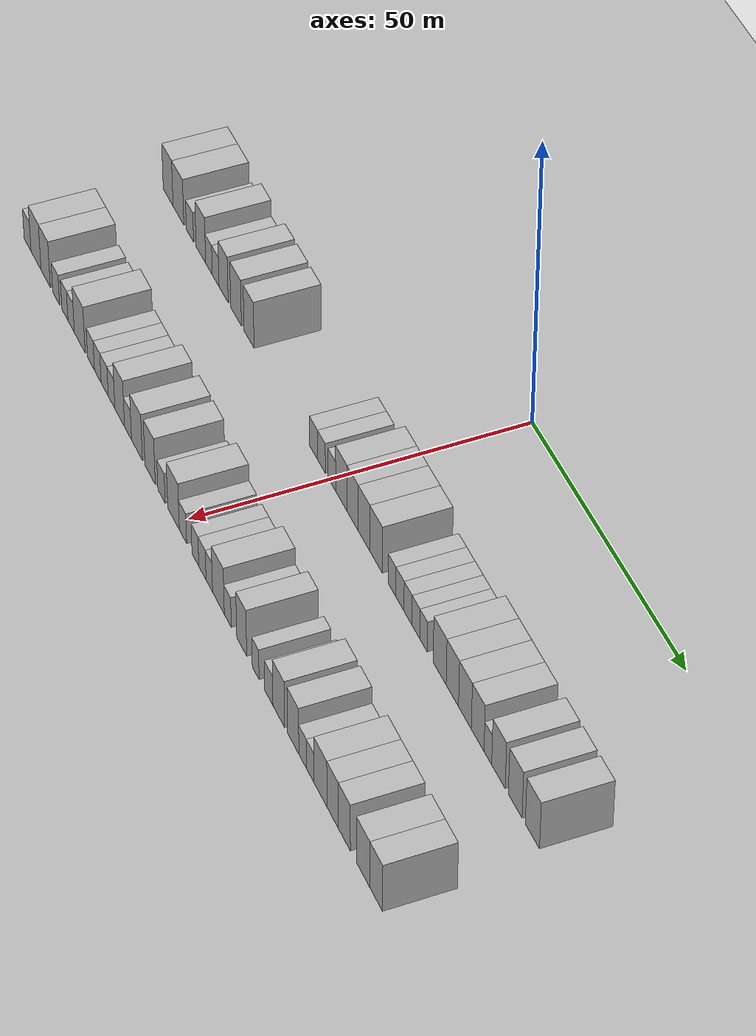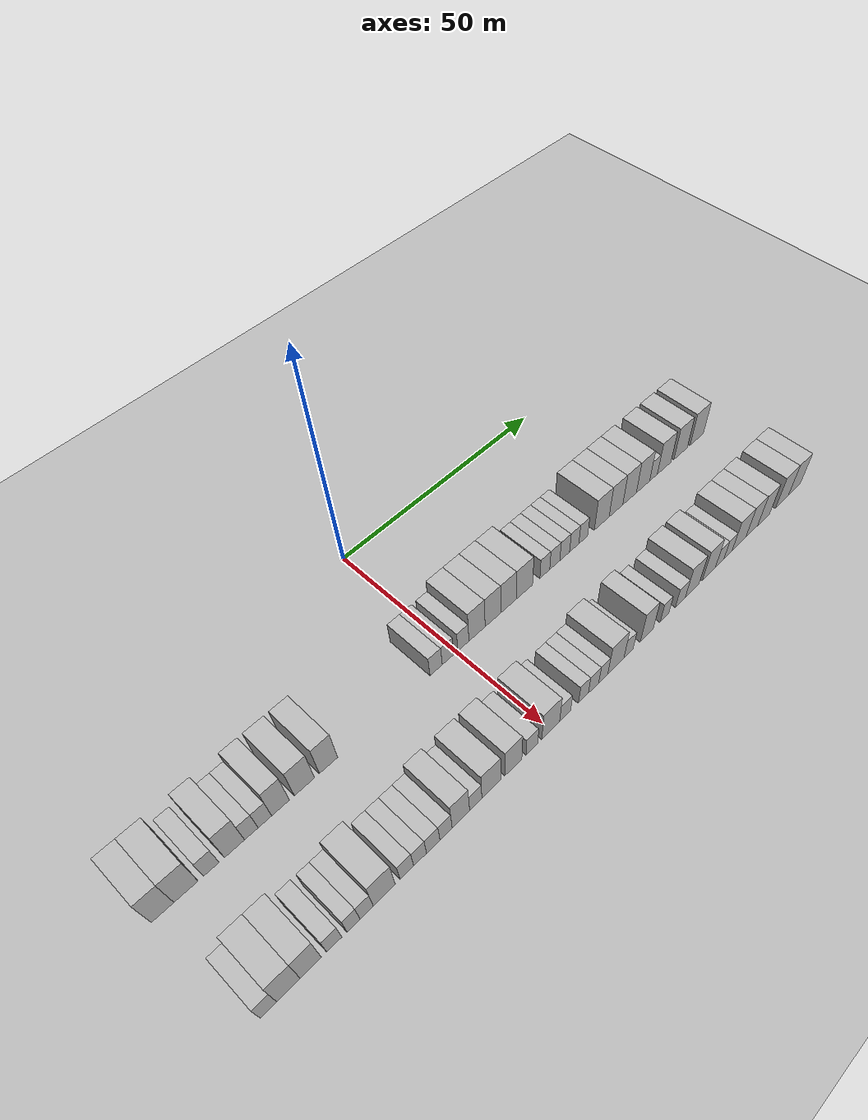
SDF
<sdf version="1.6">
 <world name="default">
  <include><name>ground_plane_1</name><uri>model://HANNAS_ground_plane</uri></include>
  <include>
   <name>ground_plane_2</name>
   <uri>model://HANNAS_ground_plane</uri>
   <pose>100 0 0  0 0 0</pose>
  </include>
  <model name="building_29">
   <static>1</static>
   <pose>25.0000 -61.9204 0 0.000000 0.000000 0.000000</pose>
   <link name="link">
    <pose>0 0 4.50 0 0 0</pose>
    <collision name="collision"><geometry><box><size>10.0000 4.0477 9.0000</size></box></geometry></collision>
    <visual name="visual">
     <cast_shadows>0</cast_shadows>
     <geometry><box><size>10.0000 4.0477 9.0000</size></box></geometry>
     <material>
      <script>
       <uri>model://HANNAS_wall/materials/scripts</uri>
       <uri>model://HANNAS_wall/materials/textures</uri>
       <name>vrc/HANNAS_wall</name>
      </script>
     </material>
    </visual>
   </link>
  </model>
  <model name="building_30">
   <static>1</static>
   <pose>25.0000 -57.6876 0 0.000000 0.000000 0.000000</pose>
   <link name="link">
    <pose>0 0 4.50 0 0 0</pose>
    <collision name="collision"><geometry><box><size>10.0000 4.4179 9.0000</size></box></geometry></collision>
    <visual name="visual">
     <cast_shadows>0</cast_shadows>
     <geometry><box><size>10.0000 4.4179 9.0000</size></box></geometry>
     <material>
      <script>
       <uri>model://HANNAS_wall/materials/scripts</uri>
       <uri>model://HANNAS_wall/materials/textures</uri>
       <name>vrc/HANNAS_wall</name>
      </script>
     </material>
    </visual>
   </link>
  </model>
  <model name="building_31">
   <static>1</static>
   <pose>25.0000 -53.0100 0 0.000000 0.000000 0.000000</pose>
   <link name="link">
    <pose>0 0 3.00 0 0 0</pose>
    <collision name="collision"><geometry><box><size>10.0000 2.9374 6.0000</size></box></geometry></collision>
    <visual name="visual">
     <cast_shadows>0</cast_shadows>
     <geometry><box><size>10.0000 2.9374 6.0000</size></box></geometry>
     <material>
      <script>
       <uri>model://HANNAS_wall/materials/scripts</uri>
       <uri>model://HANNAS_wall/materials/textures</uri>
       <name>vrc/HANNAS_wall</name>
      </script>
     </material>
    </visual>
   </link>
  </model>
  <model name="building_32">
   <static>1</static>
   <pose>25.0000 -48.6133 0 0.000000 0.000000 0.000000</pose>
   <link name="link">
    <pose>0 0 4.50 0 0 0</pose>
    <collision name="collision"><geometry><box><size>10.0000 3.8559 9.0000</size></box></geometry></collision>
    <visual name="visual">
     <cast_shadows>0</cast_shadows>
     <geometry><box><size>10.0000 3.8559 9.0000</size></box></geometry>
     <material>
      <script>
       <uri>model://HANNAS_wall/materials/scripts</uri>
       <uri>model://HANNAS_wall/materials/textures</uri>
       <name>vrc/HANNAS_wall</name>
      </script>
     </material>
    </visual>
   </link>
  </model>
  <model name="building_33">
   <static>1</static>
   <pose>25.0000 -45.3594 0 0.000000 0.000000 0.000000</pose>
   <link name="link">
    <pose>0 0 3.00 0 0 0</pose>
    <collision name="collision"><geometry><box><size>10.0000 2.6521 6.0000</size></box></geometry></collision>
    <visual name="visual">
     <cast_shadows>0</cast_shadows>
     <geometry><box><size>10.0000 2.6521 6.0000</size></box></geometry>
     <material>
      <script>
       <uri>model://HANNAS_wall/materials/scripts</uri>
       <uri>model://HANNAS_wall/materials/textures</uri>
       <name>vrc/HANNAS_wall</name>
      </script>
     </material>
    </visual>
   </link>
  </model>
  <model name="building_34">
   <static>1</static>
   <pose>25.0000 -42.6899 0 0.000000 0.000000 0.000000</pose>
   <link name="link">
    <pose>0 0 3.00 0 0 0</pose>
    <collision name="collision"><geometry><box><size>10.0000 2.6868 6.0000</size></box></geometry></collision>
    <visual name="visual">
     <cast_shadows>0</cast_shadows>
     <geometry><box><size>10.0000 2.6868 6.0000</size></box></geometry>
     <material>
      <script>
       <uri>model://HANNAS_wall/materials/scripts</uri>
       <uri>model://HANNAS_wall/materials/textures</uri>
       <name>vrc/HANNAS_wall</name>
      </script>
     </material>
    </visual>
   </link>
  </model>
  <model name="building_35">
   <static>1</static>
   <pose>25.0000 -39.5424 0 0.000000 0.000000 0.000000</pose>
   <link name="link">
    <pose>0 0 4.50 0 0 0</pose>
    <collision name="collision"><geometry><box><size>10.0000 3.6082 9.0000</size></box></geometry></collision>
    <visual name="visual">
     <cast_shadows>0</cast_shadows>
     <geometry><box><size>10.0000 3.6082 9.0000</size></box></geometry>
     <material>
      <script>
       <uri>model://HANNAS_wall/materials/scripts</uri>
       <uri>model://HANNAS_wall/materials/textures</uri>
       <name>vrc/HANNAS_wall</name>
      </script>
     </material>
    </visual>
   </link>
  </model>
  <model name="building_36">
   <static>1</static>
   <pose>25.0000 -34.6428 0 0.000000 0.000000 0.000000</pose>
   <link name="link">
    <pose>0 0 4.50 0 0 0</pose>
    <collision name="collision"><geometry><box><size>10.0000 4.1911 9.0000</size></box></geometry></collision>
    <visual name="visual">
     <cast_shadows>0</cast_shadows>
     <geometry><box><size>10.0000 4.1911 9.0000</size></box></geometry>
     <material>
      <script>
       <uri>model://HANNAS_wall/materials/scripts</uri>
       <uri>model://HANNAS_wall/materials/textures</uri>
       <name>vrc/HANNAS_wall</name>
      </script>
     </material>
    </visual>
   </link>
  </model>
  <model name="building_37">
   <static>1</static>
   <pose>25.0000 -29.5987 0 0.000000 0.000000 0.000000</pose>
   <link name="link">
    <pose>0 0 4.50 0 0 0</pose>
    <collision name="collision"><geometry><box><size>10.0000 3.8973 9.0000</size></box></geometry></collision>
    <visual name="visual">
     <cast_shadows>0</cast_shadows>
     <geometry><box><size>10.0000 3.8973 9.0000</size></box></geometry>
     <material>
      <script>
       <uri>model://HANNAS_wall/materials/scripts</uri>
       <uri>model://HANNAS_wall/materials/textures</uri>
       <name>vrc/HANNAS_wall</name>
      </script>
     </material>
    </visual>
   </link>
  </model>
  <model name="building_38">
   <static>1</static>
   <pose>25.0000 -5.2154 0 0.000000 0.000000 0.000000</pose>
   <link name="link">
    <pose>0 0 3.00 0 0 0</pose>
    <collision name="collision"><geometry><box><size>10.0000 2.9564 6.0000</size></box></geometry></collision>
    <visual name="visual">
     <cast_shadows>0</cast_shadows>
     <geometry><box><size>10.0000 2.9564 6.0000</size></box></geometry>
     <material>
      <script>
       <uri>model://HANNAS_wall/materials/scripts</uri>
       <uri>model://HANNAS_wall/materials/textures</uri>
       <name>vrc/HANNAS_wall</name>
      </script>
     </material>
    </visual>
   </link>
  </model>
  <model name="building_39">
   <static>1</static>
   <pose>25.0000 -2.3277 0 0.000000 0.000000 0.000000</pose>
   <link name="link">
    <pose>0 0 3.00 0 0 0</pose>
    <collision name="collision"><geometry><box><size>10.0000 2.8189 6.0000</size></box></geometry></collision>
    <visual name="visual">
     <cast_shadows>0</cast_shadows>
     <geometry><box><size>10.0000 2.8189 6.0000</size></box></geometry>
     <material>
      <script>
       <uri>model://HANNAS_wall/materials/scripts</uri>
       <uri>model://HANNAS_wall/materials/textures</uri>
       <name>vrc/HANNAS_wall</name>
      </script>
     </material>
    </visual>
   </link>
  </model>
  <model name="building_40">
   <static>1</static>
   <pose>25.0000 1.4617 0 0.000000 0.000000 0.000000</pose>
   <link name="link">
    <pose>0 0 3.00 0 0 0</pose>
    <collision name="collision"><geometry><box><size>10.0000 2.7599 6.0000</size></box></geometry></collision>
    <visual name="visual">
     <cast_shadows>0</cast_shadows>
     <geometry><box><size>10.0000 2.7599 6.0000</size></box></geometry>
     <material>
      <script>
       <uri>model://HANNAS_wall/materials/scripts</uri>
       <uri>model://HANNAS_wall/materials/textures</uri>
       <name>vrc/HANNAS_wall</name>
      </script>
     </material>
    </visual>
   </link>
  </model>
  <model name="building_41">
   <static>1</static>
   <pose>25.0000 4.8905 0 0.000000 0.000000 0.000000</pose>
   <link name="link">
    <pose>0 0 4.50 0 0 0</pose>
    <collision name="collision"><geometry><box><size>10.0000 4.0977 9.0000</size></box></geometry></collision>
    <visual name="visual">
     <cast_shadows>0</cast_shadows>
     <geometry><box><size>10.0000 4.0977 9.0000</size></box></geometry>
     <material>
      <script>
       <uri>model://HANNAS_wall/materials/scripts</uri>
       <uri>model://HANNAS_wall/materials/textures</uri>
       <name>vrc/HANNAS_wall</name>
      </script>
     </material>
    </visual>
   </link>
  </model>
  <model name="building_42">
   <static>1</static>
   <pose>25.0000 8.9445 0 0.000000 0.000000 0.000000</pose>
   <link name="link">
    <pose>0 0 4.50 0 0 0</pose>
    <collision name="collision"><geometry><box><size>10.0000 4.0104 9.0000</size></box></geometry></collision>
    <visual name="visual">
     <cast_shadows>0</cast_shadows>
     <geometry><box><size>10.0000 4.0104 9.0000</size></box></geometry>
     <material>
      <script>
       <uri>model://HANNAS_wall/materials/scripts</uri>
       <uri>model://HANNAS_wall/materials/textures</uri>
       <name>vrc/HANNAS_wall</name>
      </script>
     </material>
    </visual>
   </link>
  </model>
  <model name="building_43">
   <static>1</static>
   <pose>25.0000 12.9975 0 0.000000 0.000000 0.000000</pose>
   <link name="link">
    <pose>0 0 4.50 0 0 0</pose>
    <collision name="collision"><geometry><box><size>10.0000 4.0955 9.0000</size></box></geometry></collision>
    <visual name="visual">
     <cast_shadows>0</cast_shadows>
     <geometry><box><size>10.0000 4.0955 9.0000</size></box></geometry>
     <material>
      <script>
       <uri>model://HANNAS_wall/materials/scripts</uri>
       <uri>model://HANNAS_wall/materials/textures</uri>
       <name>vrc/HANNAS_wall</name>
      </script>
     </material>
    </visual>
   </link>
  </model>
  <model name="building_44">
   <static>1</static>
   <pose>25.0000 17.2449 0 0.000000 0.000000 0.000000</pose>
   <link name="link">
    <pose>0 0 4.50 0 0 0</pose>
    <collision name="collision"><geometry><box><size>10.0000 4.3993 9.0000</size></box></geometry></collision>
    <visual name="visual">
     <cast_shadows>0</cast_shadows>
     <geometry><box><size>10.0000 4.3993 9.0000</size></box></geometry>
     <material>
      <script>
       <uri>model://HANNAS_wall/materials/scripts</uri>
       <uri>model://HANNAS_wall/materials/textures</uri>
       <name>vrc/HANNAS_wall</name>
      </script>
     </material>
    </visual>
   </link>
  </model>
  <model name="building_45">
   <static>1</static>
   <pose>25.0000 22.7931 0 0.000000 0.000000 0.000000</pose>
   <link name="link">
    <pose>0 0 3.00 0 0 0</pose>
    <collision name="collision"><geometry><box><size>10.0000 2.6971 6.0000</size></box></geometry></collision>
    <visual name="visual">
     <cast_shadows>0</cast_shadows>
     <geometry><box><size>10.0000 2.6971 6.0000</size></box></geometry>
     <material>
      <script>
       <uri>model://HANNAS_wall/materials/scripts</uri>
       <uri>model://HANNAS_wall/materials/textures</uri>
       <name>vrc/HANNAS_wall</name>
      </script>
     </material>
    </visual>
   </link>
  </model>
  <model name="building_46">
   <static>1</static>
   <pose>25.0000 25.5501 0 0.000000 0.000000 0.000000</pose>
   <link name="link">
    <pose>0 0 3.00 0 0 0</pose>
    <collision name="collision"><geometry><box><size>10.0000 2.8170 6.0000</size></box></geometry></collision>
    <visual name="visual">
     <cast_shadows>0</cast_shadows>
     <geometry><box><size>10.0000 2.8170 6.0000</size></box></geometry>
     <material>
      <script>
       <uri>model://HANNAS_wall/materials/scripts</uri>
       <uri>model://HANNAS_wall/materials/textures</uri>
       <name>vrc/HANNAS_wall</name>
      </script>
     </material>
    </visual>
   </link>
  </model>
  <model name="building_47">
   <static>1</static>
   <pose>25.0000 28.3322 0 0.000000 0.000000 0.000000</pose>
   <link name="link">
    <pose>0 0 3.00 0 0 0</pose>
    <collision name="collision"><geometry><box><size>10.0000 2.7472 6.0000</size></box></geometry></collision>
    <visual name="visual">
     <cast_shadows>0</cast_shadows>
     <geometry><box><size>10.0000 2.7472 6.0000</size></box></geometry>
     <material>
      <script>
       <uri>model://HANNAS_wall/materials/scripts</uri>
       <uri>model://HANNAS_wall/materials/textures</uri>
       <name>vrc/HANNAS_wall</name>
      </script>
     </material>
    </visual>
   </link>
  </model>
  <model name="building_48">
   <static>1</static>
   <pose>25.0000 31.0269 0 0.000000 0.000000 0.000000</pose>
   <link name="link">
    <pose>0 0 3.00 0 0 0</pose>
    <collision name="collision"><geometry><box><size>10.0000 2.6422 6.0000</size></box></geometry></collision>
    <visual name="visual">
     <cast_shadows>0</cast_shadows>
     <geometry><box><size>10.0000 2.6422 6.0000</size></box></geometry>
     <material>
      <script>
       <uri>model://HANNAS_wall/materials/scripts</uri>
       <uri>model://HANNAS_wall/materials/textures</uri>
       <name>vrc/HANNAS_wall</name>
      </script>
     </material>
    </visual>
   </link>
  </model>
  <model name="building_49">
   <static>1</static>
   <pose>25.0000 33.6311 0 0.000000 0.000000 0.000000</pose>
   <link name="link">
    <pose>0 0 3.00 0 0 0</pose>
    <collision name="collision"><geometry><box><size>10.0000 2.5661 6.0000</size></box></geometry></collision>
    <visual name="visual">
     <cast_shadows>0</cast_shadows>
     <geometry><box><size>10.0000 2.5661 6.0000</size></box></geometry>
     <material>
      <script>
       <uri>model://HANNAS_wall/materials/scripts</uri>
       <uri>model://HANNAS_wall/materials/textures</uri>
       <name>vrc/HANNAS_wall</name>
      </script>
     </material>
    </visual>
   </link>
  </model>
  <model name="building_50">
   <static>1</static>
   <pose>25.0000 39.0998 0 0.000000 0.000000 0.000000</pose>
   <link name="link">
    <pose>0 0 4.50 0 0 0</pose>
    <collision name="collision"><geometry><box><size>10.0000 4.3714 9.0000</size></box></geometry></collision>
    <visual name="visual">
     <cast_shadows>0</cast_shadows>
     <geometry><box><size>10.0000 4.3714 9.0000</size></box></geometry>
     <material>
      <script>
       <uri>model://HANNAS_wall/materials/scripts</uri>
       <uri>model://HANNAS_wall/materials/textures</uri>
       <name>vrc/HANNAS_wall</name>
      </script>
     </material>
    </visual>
   </link>
  </model>
  <model name="building_51">
   <static>1</static>
   <pose>25.0000 43.3485 0 0.000000 0.000000 0.000000</pose>
   <link name="link">
    <pose>0 0 4.50 0 0 0</pose>
    <collision name="collision"><geometry><box><size>10.0000 4.1260 9.0000</size></box></geometry></collision>
    <visual name="visual">
     <cast_shadows>0</cast_shadows>
     <geometry><box><size>10.0000 4.1260 9.0000</size></box></geometry>
     <material>
      <script>
       <uri>model://HANNAS_wall/materials/scripts</uri>
       <uri>model://HANNAS_wall/materials/textures</uri>
       <name>vrc/HANNAS_wall</name>
      </script>
     </material>
    </visual>
   </link>
  </model>
  <model name="building_52">
   <static>1</static>
   <pose>25.0000 47.5089 0 0.000000 0.000000 0.000000</pose>
   <link name="link">
    <pose>0 0 4.50 0 0 0</pose>
    <collision name="collision"><geometry><box><size>10.0000 4.1948 9.0000</size></box></geometry></collision>
    <visual name="visual">
     <cast_shadows>0</cast_shadows>
     <geometry><box><size>10.0000 4.1948 9.0000</size></box></geometry>
     <material>
      <script>
       <uri>model://HANNAS_wall/materials/scripts</uri>
       <uri>model://HANNAS_wall/materials/textures</uri>
       <name>vrc/HANNAS_wall</name>
      </script>
     </material>
    </visual>
   </link>
  </model>
  <model name="building_53">
   <static>1</static>
   <pose>25.0000 51.6875 0 0.000000 0.000000 0.000000</pose>
   <link name="link">
    <pose>0 0 4.50 0 0 0</pose>
    <collision name="collision"><geometry><box><size>10.0000 4.1624 9.0000</size></box></geometry></collision>
    <visual name="visual">
     <cast_shadows>0</cast_shadows>
     <geometry><box><size>10.0000 4.1624 9.0000</size></box></geometry>
     <material>
      <script>
       <uri>model://HANNAS_wall/materials/scripts</uri>
       <uri>model://HANNAS_wall/materials/textures</uri>
       <name>vrc/HANNAS_wall</name>
      </script>
     </material>
    </visual>
   </link>
  </model>
  <model name="building_54">
   <static>1</static>
   <pose>25.0000 55.0041 0 0.000000 0.000000 0.000000</pose>
   <link name="link">
    <pose>0 0 3.00 0 0 0</pose>
    <collision name="collision"><geometry><box><size>10.0000 2.4706 6.0000</size></box></geometry></collision>
    <visual name="visual">
     <cast_shadows>0</cast_shadows>
     <geometry><box><size>10.0000 2.4706 6.0000</size></box></geometry>
     <material>
      <script>
       <uri>model://HANNAS_wall/materials/scripts</uri>
       <uri>model://HANNAS_wall/materials/textures</uri>
       <name>vrc/HANNAS_wall</name>
      </script>
     </material>
    </visual>
   </link>
  </model>
  <model name="building_55">
   <static>1</static>
   <pose>25.0000 58.4217 0 0.000000 0.000000 0.000000</pose>
   <link name="link">
    <pose>0 0 4.50 0 0 0</pose>
    <collision name="collision"><geometry><box><size>10.0000 4.3647 9.0000</size></box></geometry></collision>
    <visual name="visual">
     <cast_shadows>0</cast_shadows>
     <geometry><box><size>10.0000 4.3647 9.0000</size></box></geometry>
     <material>
      <script>
       <uri>model://HANNAS_wall/materials/scripts</uri>
       <uri>model://HANNAS_wall/materials/textures</uri>
       <name>vrc/HANNAS_wall</name>
      </script>
     </material>
    </visual>
   </link>
  </model>
  <model name="building_56">
   <static>1</static>
   <pose>25.0000 63.7967 0 0.000000 0.000000 0.000000</pose>
   <link name="link">
    <pose>0 0 4.50 0 0 0</pose>
    <collision name="collision"><geometry><box><size>10.0000 4.3852 9.0000</size></box></geometry></collision>
    <visual name="visual">
     <cast_shadows>0</cast_shadows>
     <geometry><box><size>10.0000 4.3852 9.0000</size></box></geometry>
     <material>
      <script>
       <uri>model://HANNAS_wall/materials/scripts</uri>
       <uri>model://HANNAS_wall/materials/textures</uri>
       <name>vrc/HANNAS_wall</name>
      </script>
     </material>
    </visual>
   </link>
  </model>
  <model name="building_57">
   <static>1</static>
   <pose>25.0000 69.2320 0 0.000000 0.000000 0.000000</pose>
   <link name="link">
    <pose>0 0 4.50 0 0 0</pose>
    <collision name="collision"><geometry><box><size>10.0000 4.4853 9.0000</size></box></geometry></collision>
    <visual name="visual">
     <cast_shadows>0</cast_shadows>
     <geometry><box><size>10.0000 4.4853 9.0000</size></box></geometry>
     <material>
      <script>
       <uri>model://HANNAS_wall/materials/scripts</uri>
       <uri>model://HANNAS_wall/materials/textures</uri>
       <name>vrc/HANNAS_wall</name>
      </script>
     </material>
    </visual>
   </link>
  </model>
  <model name="building_123">
   <static>1</static>
   <pose>47.0000 -59.7444 0 0.000000 0.000000 0.000000</pose>
   <link name="link">
    <pose>0 0 3.00 0 0 0</pose>
    <collision name="collision"><geometry><box><size>10.0000 2.9421 6.0000</size></box></geometry></collision>
    <visual name="visual">
     <cast_shadows>0</cast_shadows>
     <geometry><box><size>10.0000 2.9421 6.0000</size></box></geometry>
     <material>
      <script>
       <uri>model://HANNAS_wall/materials/scripts</uri>
       <uri>model://HANNAS_wall/materials/textures</uri>
       <name>vrc/HANNAS_wall</name>
      </script>
     </material>
    </visual>
   </link>
  </model>
  <model name="building_124">
   <static>1</static>
   <pose>47.0000 -56.1147 0 0.000000 0.000000 0.000000</pose>
   <link name="link">
    <pose>0 0 4.50 0 0 0</pose>
    <collision name="collision"><geometry><box><size>10.0000 4.3173 9.0000</size></box></geometry></collision>
    <visual name="visual">
     <cast_shadows>0</cast_shadows>
     <geometry><box><size>10.0000 4.3173 9.0000</size></box></geometry>
     <material>
      <script>
       <uri>model://HANNAS_wall/materials/scripts</uri>
       <uri>model://HANNAS_wall/materials/textures</uri>
       <name>vrc/HANNAS_wall</name>
      </script>
     </material>
    </visual>
   </link>
  </model>
  <model name="building_125">
   <static>1</static>
   <pose>47.0000 -51.9781 0 0.000000 0.000000 0.000000</pose>
   <link name="link">
    <pose>0 0 4.50 0 0 0</pose>
    <collision name="collision"><geometry><box><size>10.0000 3.9560 9.0000</size></box></geometry></collision>
    <visual name="visual">
     <cast_shadows>0</cast_shadows>
     <geometry><box><size>10.0000 3.9560 9.0000</size></box></geometry>
     <material>
      <script>
       <uri>model://HANNAS_wall/materials/scripts</uri>
       <uri>model://HANNAS_wall/materials/textures</uri>
       <name>vrc/HANNAS_wall</name>
      </script>
     </material>
    </visual>
   </link>
  </model>
  <model name="building_126">
   <static>1</static>
   <pose>47.0000 -47.5521 0 0.000000 0.000000 0.000000</pose>
   <link name="link">
    <pose>0 0 3.00 0 0 0</pose>
    <collision name="collision"><geometry><box><size>10.0000 2.8960 6.0000</size></box></geometry></collision>
    <visual name="visual">
     <cast_shadows>0</cast_shadows>
     <geometry><box><size>10.0000 2.8960 6.0000</size></box></geometry>
     <material>
      <script>
       <uri>model://HANNAS_wall/materials/scripts</uri>
       <uri>model://HANNAS_wall/materials/textures</uri>
       <name>vrc/HANNAS_wall</name>
      </script>
     </material>
    </visual>
   </link>
  </model>
  <model name="building_127">
   <static>1</static>
   <pose>47.0000 -43.8346 0 0.000000 0.000000 0.000000</pose>
   <link name="link">
    <pose>0 0 3.00 0 0 0</pose>
    <collision name="collision"><geometry><box><size>10.0000 2.5390 6.0000</size></box></geometry></collision>
    <visual name="visual">
     <cast_shadows>0</cast_shadows>
     <geometry><box><size>10.0000 2.5390 6.0000</size></box></geometry>
     <material>
      <script>
       <uri>model://HANNAS_wall/materials/scripts</uri>
       <uri>model://HANNAS_wall/materials/textures</uri>
       <name>vrc/HANNAS_wall</name>
      </script>
     </material>
    </visual>
   </link>
  </model>
  <model name="building_128">
   <static>1</static>
   <pose>47.0000 -41.2404 0 0.000000 0.000000 0.000000</pose>
   <link name="link">
    <pose>0 0 3.00 0 0 0</pose>
    <collision name="collision"><geometry><box><size>10.0000 2.6493 6.0000</size></box></geometry></collision>
    <visual name="visual">
     <cast_shadows>0</cast_shadows>
     <geometry><box><size>10.0000 2.6493 6.0000</size></box></geometry>
     <material>
      <script>
       <uri>model://HANNAS_wall/materials/scripts</uri>
       <uri>model://HANNAS_wall/materials/textures</uri>
       <name>vrc/HANNAS_wall</name>
      </script>
     </material>
    </visual>
   </link>
  </model>
  <model name="building_129">
   <static>1</static>
   <pose>47.0000 -37.6759 0 0.000000 0.000000 0.000000</pose>
   <link name="link">
    <pose>0 0 4.50 0 0 0</pose>
    <collision name="collision"><geometry><box><size>10.0000 4.4796 9.0000</size></box></geometry></collision>
    <visual name="visual">
     <cast_shadows>0</cast_shadows>
     <geometry><box><size>10.0000 4.4796 9.0000</size></box></geometry>
     <material>
      <script>
       <uri>model://HANNAS_wall/materials/scripts</uri>
       <uri>model://HANNAS_wall/materials/textures</uri>
       <name>vrc/HANNAS_wall</name>
      </script>
     </material>
    </visual>
   </link>
  </model>
  <model name="building_130">
   <static>1</static>
   <pose>47.0000 -33.0294 0 0.000000 0.000000 0.000000</pose>
   <link name="link">
    <pose>0 0 3.00 0 0 0</pose>
    <collision name="collision"><geometry><box><size>10.0000 2.8134 6.0000</size></box></geometry></collision>
    <visual name="visual">
     <cast_shadows>0</cast_shadows>
     <geometry><box><size>10.0000 2.8134 6.0000</size></box></geometry>
     <material>
      <script>
       <uri>model://HANNAS_wall/materials/scripts</uri>
       <uri>model://HANNAS_wall/materials/textures</uri>
       <name>vrc/HANNAS_wall</name>
      </script>
     </material>
    </visual>
   </link>
  </model>
  <model name="building_131">
   <static>1</static>
   <pose>47.0000 -30.2578 0 0.000000 0.000000 0.000000</pose>
   <link name="link">
    <pose>0 0 3.00 0 0 0</pose>
    <collision name="collision"><geometry><box><size>10.0000 2.7298 6.0000</size></box></geometry></collision>
    <visual name="visual">
     <cast_shadows>0</cast_shadows>
     <geometry><box><size>10.0000 2.7298 6.0000</size></box></geometry>
     <material>
      <script>
       <uri>model://HANNAS_wall/materials/scripts</uri>
       <uri>model://HANNAS_wall/materials/textures</uri>
       <name>vrc/HANNAS_wall</name>
      </script>
     </material>
    </visual>
   </link>
  </model>
  <model name="building_132">
   <static>1</static>
   <pose>47.0000 -27.4557 0 0.000000 0.000000 0.000000</pose>
   <link name="link">
    <pose>0 0 3.00 0 0 0</pose>
    <collision name="collision"><geometry><box><size>10.0000 2.8744 6.0000</size></box></geometry></collision>
    <visual name="visual">
     <cast_shadows>0</cast_shadows>
     <geometry><box><size>10.0000 2.8744 6.0000</size></box></geometry>
     <material>
      <script>
       <uri>model://HANNAS_wall/materials/scripts</uri>
       <uri>model://HANNAS_wall/materials/textures</uri>
       <name>vrc/HANNAS_wall</name>
      </script>
     </material>
    </visual>
   </link>
  </model>
  <model name="building_133">
   <static>1</static>
   <pose>47.0000 -24.6837 0 0.000000 0.000000 0.000000</pose>
   <link name="link">
    <pose>0 0 3.00 0 0 0</pose>
    <collision name="collision"><geometry><box><size>10.0000 2.6696 6.0000</size></box></geometry></collision>
    <visual name="visual">
     <cast_shadows>0</cast_shadows>
     <geometry><box><size>10.0000 2.6696 6.0000</size></box></geometry>
     <material>
      <script>
       <uri>model://HANNAS_wall/materials/scripts</uri>
       <uri>model://HANNAS_wall/materials/textures</uri>
       <name>vrc/HANNAS_wall</name>
      </script>
     </material>
    </visual>
   </link>
  </model>
  <model name="building_134">
   <static>1</static>
   <pose>47.0000 -21.4109 0 0.000000 0.000000 0.000000</pose>
   <link name="link">
    <pose>0 0 4.50 0 0 0</pose>
    <collision name="collision"><geometry><box><size>10.0000 3.8761 9.0000</size></box></geometry></collision>
    <visual name="visual">
     <cast_shadows>0</cast_shadows>
     <geometry><box><size>10.0000 3.8761 9.0000</size></box></geometry>
     <material>
      <script>
       <uri>model://HANNAS_wall/materials/scripts</uri>
       <uri>model://HANNAS_wall/materials/textures</uri>
       <name>vrc/HANNAS_wall</name>
      </script>
     </material>
    </visual>
   </link>
  </model>
  <model name="building_135">
   <static>1</static>
   <pose>47.0000 -18.0861 0 0.000000 0.000000 0.000000</pose>
   <link name="link">
    <pose>0 0 3.00 0 0 0</pose>
    <collision name="collision"><geometry><box><size>10.0000 2.7736 6.0000</size></box></geometry></collision>
    <visual name="visual">
     <cast_shadows>0</cast_shadows>
     <geometry><box><size>10.0000 2.7736 6.0000</size></box></geometry>
     <material>
      <script>
       <uri>model://HANNAS_wall/materials/scripts</uri>
       <uri>model://HANNAS_wall/materials/textures</uri>
       <name>vrc/HANNAS_wall</name>
      </script>
     </material>
    </visual>
   </link>
  </model>
  <model name="building_136">
   <static>1</static>
   <pose>47.0000 -14.5358 0 0.000000 0.000000 0.000000</pose>
   <link name="link">
    <pose>0 0 4.50 0 0 0</pose>
    <collision name="collision"><geometry><box><size>10.0000 4.3270 9.0000</size></box></geometry></collision>
    <visual name="visual">
     <cast_shadows>0</cast_shadows>
     <geometry><box><size>10.0000 4.3270 9.0000</size></box></geometry>
     <material>
      <script>
       <uri>model://HANNAS_wall/materials/scripts</uri>
       <uri>model://HANNAS_wall/materials/textures</uri>
       <name>vrc/HANNAS_wall</name>
      </script>
     </material>
    </visual>
   </link>
  </model>
  <model name="building_137">
   <static>1</static>
   <pose>47.0000 -9.3653 0 0.000000 0.000000 0.000000</pose>
   <link name="link">
    <pose>0 0 4.50 0 0 0</pose>
    <collision name="collision"><geometry><box><size>10.0000 4.0140 9.0000</size></box></geometry></collision>
    <visual name="visual">
     <cast_shadows>0</cast_shadows>
     <geometry><box><size>10.0000 4.0140 9.0000</size></box></geometry>
     <material>
      <script>
       <uri>model://HANNAS_wall/materials/scripts</uri>
       <uri>model://HANNAS_wall/materials/textures</uri>
       <name>vrc/HANNAS_wall</name>
      </script>
     </material>
    </visual>
   </link>
  </model>
  <model name="building_138">
   <static>1</static>
   <pose>47.0000 -4.9376 0 0.000000 0.000000 0.000000</pose>
   <link name="link">
    <pose>0 0 3.00 0 0 0</pose>
    <collision name="collision"><geometry><box><size>10.0000 2.8413 6.0000</size></box></geometry></collision>
    <visual name="visual">
     <cast_shadows>0</cast_shadows>
     <geometry><box><size>10.0000 2.8413 6.0000</size></box></geometry>
     <material>
      <script>
       <uri>model://HANNAS_wall/materials/scripts</uri>
       <uri>model://HANNAS_wall/materials/textures</uri>
       <name>vrc/HANNAS_wall</name>
      </script>
     </material>
    </visual>
   </link>
  </model>
  <model name="building_139">
   <static>1</static>
   <pose>47.0000 -0.3030 0 0.000000 0.000000 0.000000</pose>
   <link name="link">
    <pose>0 0 4.50 0 0 0</pose>
    <collision name="collision"><geometry><box><size>10.0000 4.4280 9.0000</size></box></geometry></collision>
    <visual name="visual">
     <cast_shadows>0</cast_shadows>
     <geometry><box><size>10.0000 4.4280 9.0000</size></box></geometry>
     <material>
      <script>
       <uri>model://HANNAS_wall/materials/scripts</uri>
       <uri>model://HANNAS_wall/materials/textures</uri>
       <name>vrc/HANNAS_wall</name>
      </script>
     </material>
    </visual>
   </link>
  </model>
  <model name="building_140">
   <static>1</static>
   <pose>47.0000 3.3090 0 0.000000 0.000000 0.000000</pose>
   <link name="link">
    <pose>0 0 3.00 0 0 0</pose>
    <collision name="collision"><geometry><box><size>10.0000 2.7961 6.0000</size></box></geometry></collision>
    <visual name="visual">
     <cast_shadows>0</cast_shadows>
     <geometry><box><size>10.0000 2.7961 6.0000</size></box></geometry>
     <material>
      <script>
       <uri>model://HANNAS_wall/materials/scripts</uri>
       <uri>model://HANNAS_wall/materials/textures</uri>
       <name>vrc/HANNAS_wall</name>
      </script>
     </material>
    </visual>
   </link>
  </model>
  <model name="building_141">
   <static>1</static>
   <pose>47.0000 7.9910 0 0.000000 0.000000 0.000000</pose>
   <link name="link">
    <pose>0 0 3.00 0 0 0</pose>
    <collision name="collision"><geometry><box><size>10.0000 2.5679 6.0000</size></box></geometry></collision>
    <visual name="visual">
     <cast_shadows>0</cast_shadows>
     <geometry><box><size>10.0000 2.5679 6.0000</size></box></geometry>
     <material>
      <script>
       <uri>model://HANNAS_wall/materials/scripts</uri>
       <uri>model://HANNAS_wall/materials/textures</uri>
       <name>vrc/HANNAS_wall</name>
      </script>
     </material>
    </visual>
   </link>
  </model>
  <model name="building_142">
   <static>1</static>
   <pose>47.0000 10.6283 0 0.000000 0.000000 0.000000</pose>
   <link name="link">
    <pose>0 0 3.00 0 0 0</pose>
    <collision name="collision"><geometry><box><size>10.0000 2.7068 6.0000</size></box></geometry></collision>
    <visual name="visual">
     <cast_shadows>0</cast_shadows>
     <geometry><box><size>10.0000 2.7068 6.0000</size></box></geometry>
     <material>
      <script>
       <uri>model://HANNAS_wall/materials/scripts</uri>
       <uri>model://HANNAS_wall/materials/textures</uri>
       <name>vrc/HANNAS_wall</name>
      </script>
     </material>
    </visual>
   </link>
  </model>
  <model name="building_143">
   <static>1</static>
   <pose>47.0000 13.2009 0 0.000000 0.000000 0.000000</pose>
   <link name="link">
    <pose>0 0 3.00 0 0 0</pose>
    <collision name="collision"><geometry><box><size>10.0000 2.4383 6.0000</size></box></geometry></collision>
    <visual name="visual">
     <cast_shadows>0</cast_shadows>
     <geometry><box><size>10.0000 2.4383 6.0000</size></box></geometry>
     <material>
      <script>
       <uri>model://HANNAS_wall/materials/scripts</uri>
       <uri>model://HANNAS_wall/materials/textures</uri>
       <name>vrc/HANNAS_wall</name>
      </script>
     </material>
    </visual>
   </link>
  </model>
  <model name="building_144">
   <static>1</static>
   <pose>47.0000 16.6026 0 0.000000 0.000000 0.000000</pose>
   <link name="link">
    <pose>0 0 4.50 0 0 0</pose>
    <collision name="collision"><geometry><box><size>10.0000 4.3652 9.0000</size></box></geometry></collision>
    <visual name="visual">
     <cast_shadows>0</cast_shadows>
     <geometry><box><size>10.0000 4.3652 9.0000</size></box></geometry>
     <material>
      <script>
       <uri>model://HANNAS_wall/materials/scripts</uri>
       <uri>model://HANNAS_wall/materials/textures</uri>
       <name>vrc/HANNAS_wall</name>
      </script>
     </material>
    </visual>
   </link>
  </model>
  <model name="building_145">
   <static>1</static>
   <pose>47.0000 20.0640 0 0.000000 0.000000 0.000000</pose>
   <link name="link">
    <pose>0 0 3.00 0 0 0</pose>
    <collision name="collision"><geometry><box><size>10.0000 2.5575 6.0000</size></box></geometry></collision>
    <visual name="visual">
     <cast_shadows>0</cast_shadows>
     <geometry><box><size>10.0000 2.5575 6.0000</size></box></geometry>
     <material>
      <script>
       <uri>model://HANNAS_wall/materials/scripts</uri>
       <uri>model://HANNAS_wall/materials/textures</uri>
       <name>vrc/HANNAS_wall</name>
      </script>
     </material>
    </visual>
   </link>
  </model>
  <model name="building_146">
   <static>1</static>
   <pose>47.0000 25.1513 0 0.000000 0.000000 0.000000</pose>
   <link name="link">
    <pose>0 0 4.50 0 0 0</pose>
    <collision name="collision"><geometry><box><size>10.0000 3.6171 9.0000</size></box></geometry></collision>
    <visual name="visual">
     <cast_shadows>0</cast_shadows>
     <geometry><box><size>10.0000 3.6171 9.0000</size></box></geometry>
     <material>
      <script>
       <uri>model://HANNAS_wall/materials/scripts</uri>
       <uri>model://HANNAS_wall/materials/textures</uri>
       <name>vrc/HANNAS_wall</name>
      </script>
     </material>
    </visual>
   </link>
  </model>
  <model name="building_147">
   <static>1</static>
   <pose>47.0000 30.1877 0 0.000000 0.000000 0.000000</pose>
   <link name="link">
    <pose>0 0 3.00 0 0 0</pose>
    <collision name="collision"><geometry><box><size>10.0000 2.4557 6.0000</size></box></geometry></collision>
    <visual name="visual">
     <cast_shadows>0</cast_shadows>
     <geometry><box><size>10.0000 2.4557 6.0000</size></box></geometry>
     <material>
      <script>
       <uri>model://HANNAS_wall/materials/scripts</uri>
       <uri>model://HANNAS_wall/materials/textures</uri>
       <name>vrc/HANNAS_wall</name>
      </script>
     </material>
    </visual>
   </link>
  </model>
  <model name="building_148">
   <static>1</static>
   <pose>47.0000 34.8791 0 0.000000 0.000000 0.000000</pose>
   <link name="link">
    <pose>0 0 3.00 0 0 0</pose>
    <collision name="collision"><geometry><box><size>10.0000 2.9271 6.0000</size></box></geometry></collision>
    <visual name="visual">
     <cast_shadows>0</cast_shadows>
     <geometry><box><size>10.0000 2.9271 6.0000</size></box></geometry>
     <material>
      <script>
       <uri>model://HANNAS_wall/materials/scripts</uri>
       <uri>model://HANNAS_wall/materials/textures</uri>
       <name>vrc/HANNAS_wall</name>
      </script>
     </material>
    </visual>
   </link>
  </model>
  <model name="building_149">
   <static>1</static>
   <pose>47.0000 38.4181 0 0.000000 0.000000 0.000000</pose>
   <link name="link">
    <pose>0 0 4.50 0 0 0</pose>
    <collision name="collision"><geometry><box><size>10.0000 4.1508 9.0000</size></box></geometry></collision>
    <visual name="visual">
     <cast_shadows>0</cast_shadows>
     <geometry><box><size>10.0000 4.1508 9.0000</size></box></geometry>
     <material>
      <script>
       <uri>model://HANNAS_wall/materials/scripts</uri>
       <uri>model://HANNAS_wall/materials/textures</uri>
       <name>vrc/HANNAS_wall</name>
      </script>
     </material>
    </visual>
   </link>
  </model>
  <model name="building_150">
   <static>1</static>
   <pose>47.0000 43.4911 0 0.000000 0.000000 0.000000</pose>
   <link name="link">
    <pose>0 0 4.50 0 0 0</pose>
    <collision name="collision"><geometry><box><size>10.0000 3.9951 9.0000</size></box></geometry></collision>
    <visual name="visual">
     <cast_shadows>0</cast_shadows>
     <geometry><box><size>10.0000 3.9951 9.0000</size></box></geometry>
     <material>
      <script>
       <uri>model://HANNAS_wall/materials/scripts</uri>
       <uri>model://HANNAS_wall/materials/textures</uri>
       <name>vrc/HANNAS_wall</name>
      </script>
     </material>
    </visual>
   </link>
  </model>
  <model name="building_151">
   <static>1</static>
   <pose>47.0000 46.8173 0 0.000000 0.000000 0.000000</pose>
   <link name="link">
    <pose>0 0 3.00 0 0 0</pose>
    <collision name="collision"><geometry><box><size>10.0000 2.6574 6.0000</size></box></geometry></collision>
    <visual name="visual">
     <cast_shadows>0</cast_shadows>
     <geometry><box><size>10.0000 2.6574 6.0000</size></box></geometry>
     <material>
      <script>
       <uri>model://HANNAS_wall/materials/scripts</uri>
       <uri>model://HANNAS_wall/materials/textures</uri>
       <name>vrc/HANNAS_wall</name>
      </script>
     </material>
    </visual>
   </link>
  </model>
  <model name="building_152">
   <static>1</static>
   <pose>47.0000 49.4257 0 0.000000 0.000000 0.000000</pose>
   <link name="link">
    <pose>0 0 3.00 0 0 0</pose>
    <collision name="collision"><geometry><box><size>10.0000 2.5595 6.0000</size></box></geometry></collision>
    <visual name="visual">
     <cast_shadows>0</cast_shadows>
     <geometry><box><size>10.0000 2.5595 6.0000</size></box></geometry>
     <material>
      <script>
       <uri>model://HANNAS_wall/materials/scripts</uri>
       <uri>model://HANNAS_wall/materials/textures</uri>
       <name>vrc/HANNAS_wall</name>
      </script>
     </material>
    </visual>
   </link>
  </model>
  <model name="building_153">
   <static>1</static>
   <pose>47.0000 52.9204 0 0.000000 0.000000 0.000000</pose>
   <link name="link">
    <pose>0 0 4.50 0 0 0</pose>
    <collision name="collision"><geometry><box><size>10.0000 4.4298 9.0000</size></box></geometry></collision>
    <visual name="visual">
     <cast_shadows>0</cast_shadows>
     <geometry><box><size>10.0000 4.4298 9.0000</size></box></geometry>
     <material>
      <script>
       <uri>model://HANNAS_wall/materials/scripts</uri>
       <uri>model://HANNAS_wall/materials/textures</uri>
       <name>vrc/HANNAS_wall</name>
      </script>
     </material>
    </visual>
   </link>
  </model>
  <model name="building_154">
   <static>1</static>
   <pose>47.0000 57.0869 0 0.000000 0.000000 0.000000</pose>
   <link name="link">
    <pose>0 0 4.50 0 0 0</pose>
    <collision name="collision"><geometry><box><size>10.0000 3.9032 9.0000</size></box></geometry></collision>
    <visual name="visual">
     <cast_shadows>0</cast_shadows>
     <geometry><box><size>10.0000 3.9032 9.0000</size></box></geometry>
     <material>
      <script>
       <uri>model://HANNAS_wall/materials/scripts</uri>
       <uri>model://HANNAS_wall/materials/textures</uri>
       <name>vrc/HANNAS_wall</name>
      </script>
     </material>
    </visual>
   </link>
  </model>
  <model name="building_155">
   <static>1</static>
   <pose>47.0000 61.0333 0 0.000000 0.000000 0.000000</pose>
   <link name="link">
    <pose>0 0 4.50 0 0 0</pose>
    <collision name="collision"><geometry><box><size>10.0000 3.9895 9.0000</size></box></geometry></collision>
    <visual name="visual">
     <cast_shadows>0</cast_shadows>
     <geometry><box><size>10.0000 3.9895 9.0000</size></box></geometry>
     <material>
      <script>
       <uri>model://HANNAS_wall/materials/scripts</uri>
       <uri>model://HANNAS_wall/materials/textures</uri>
       <name>vrc/HANNAS_wall</name>
      </script>
     </material>
    </visual>
   </link>
  </model>
  <model name="building_156">
   <static>1</static>
   <pose>47.0000 67.2549 0 0.000000 0.000000 0.000000</pose>
   <link name="link">
    <pose>0 0 4.50 0 0 0</pose>
    <collision name="collision"><geometry><box><size>10.0000 4.4538 9.0000</size></box></geometry></collision>
    <visual name="visual">
     <cast_shadows>0</cast_shadows>
     <geometry><box><size>10.0000 4.4538 9.0000</size></box></geometry>
     <material>
      <script>
       <uri>model://HANNAS_wall/materials/scripts</uri>
       <uri>model://HANNAS_wall/materials/textures</uri>
       <name>vrc/HANNAS_wall</name>
      </script>
     </material>
    </visual>
   </link>
  </model>
  <model name="building_157">
   <static>1</static>
   <pose>47.0000 71.5760 0 0.000000 0.000000 0.000000</pose>
   <link name="link">
    <pose>0 0 4.50 0 0 0</pose>
    <collision name="collision"><geometry><box><size>10.0000 4.1885 9.0000</size></box></geometry></collision>
    <visual name="visual">
     <cast_shadows>0</cast_shadows>
     <geometry><box><size>10.0000 4.1885 9.0000</size></box></geometry>
     <material>
      <script>
       <uri>model://HANNAS_wall/materials/scripts</uri>
       <uri>model://HANNAS_wall/materials/textures</uri>
       <name>vrc/HANNAS_wall</name>
      </script>
     </material>
    </visual>
   </link>
  </model>
 </world>
</sdf>
